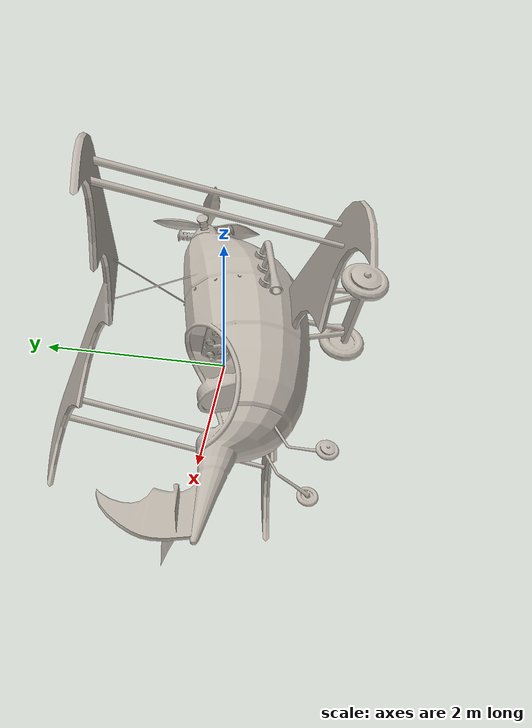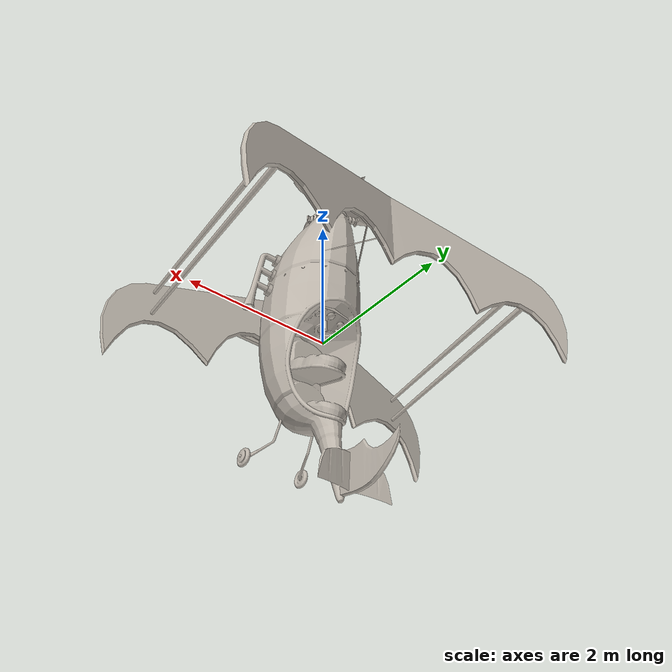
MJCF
<mujoco model="airplane_001">
  <default>
    <default class="visual">
      <geom group="2" type="mesh" contype="0" conaffinity="0"/>
    </default>
    <default class="collision">
      <geom group="3" type="mesh"/>
    </default>
  </default>
  <asset>
    <texture type="2d" name="object_0_d" file="object_0_d.png"/>
    <material name="object_0_BAKED" texture="object_0_d" specular="0.5" shininess="0.225"/>
    <mesh file="airplane_001.obj"/>
    <mesh file="airplane_001_collision_0.obj"/>
    <mesh file="airplane_001_collision_1.obj"/>
    <mesh file="airplane_001_collision_2.obj"/>
    <mesh file="airplane_001_collision_3.obj"/>
    <mesh file="airplane_001_collision_4.obj"/>
    <mesh file="airplane_001_collision_5.obj"/>
    <mesh file="airplane_001_collision_6.obj"/>
    <mesh file="airplane_001_collision_7.obj"/>
    <mesh file="airplane_001_collision_8.obj"/>
    <mesh file="airplane_001_collision_9.obj"/>
    <mesh file="airplane_001_collision_10.obj"/>
    <mesh file="airplane_001_collision_11.obj"/>
    <mesh file="airplane_001_collision_12.obj"/>
    <mesh file="airplane_001_collision_13.obj"/>
    <mesh file="airplane_001_collision_14.obj"/>
    <mesh file="airplane_001_collision_15.obj"/>
    <mesh file="airplane_001_collision_16.obj"/>
    <mesh file="airplane_001_collision_17.obj"/>
    <mesh file="airplane_001_collision_18.obj"/>
    <mesh file="airplane_001_collision_19.obj"/>
    <mesh file="airplane_001_collision_20.obj"/>
    <mesh file="airplane_001_collision_21.obj"/>
    <mesh file="airplane_001_collision_22.obj"/>
    <mesh file="airplane_001_collision_23.obj"/>
    <mesh file="airplane_001_collision_24.obj"/>
    <mesh file="airplane_001_collision_25.obj"/>
    <mesh file="airplane_001_collision_26.obj"/>
    <mesh file="airplane_001_collision_27.obj"/>
    <mesh file="airplane_001_collision_28.obj"/>
    <mesh file="airplane_001_collision_29.obj"/>
    <mesh file="airplane_001_collision_30.obj"/>
    <mesh file="airplane_001_collision_31.obj"/>
  </asset>
  <worldbody>
    <body name="airplane_001">
      <geom material="object_0_BAKED" mesh="airplane_001" class="visual"/>
      <geom mesh="airplane_001_collision_0" class="collision"/>
      <geom mesh="airplane_001_collision_1" class="collision"/>
      <geom mesh="airplane_001_collision_2" class="collision"/>
      <geom mesh="airplane_001_collision_3" class="collision"/>
      <geom mesh="airplane_001_collision_4" class="collision"/>
      <geom mesh="airplane_001_collision_5" class="collision"/>
      <geom mesh="airplane_001_collision_6" class="collision"/>
      <geom mesh="airplane_001_collision_7" class="collision"/>
      <geom mesh="airplane_001_collision_8" class="collision"/>
      <geom mesh="airplane_001_collision_9" class="collision"/>
      <geom mesh="airplane_001_collision_10" class="collision"/>
      <geom mesh="airplane_001_collision_11" class="collision"/>
      <geom mesh="airplane_001_collision_12" class="collision"/>
      <geom mesh="airplane_001_collision_13" class="collision"/>
      <geom mesh="airplane_001_collision_14" class="collision"/>
      <geom mesh="airplane_001_collision_15" class="collision"/>
      <geom mesh="airplane_001_collision_16" class="collision"/>
      <geom mesh="airplane_001_collision_17" class="collision"/>
      <geom mesh="airplane_001_collision_18" class="collision"/>
      <geom mesh="airplane_001_collision_19" class="collision"/>
      <geom mesh="airplane_001_collision_20" class="collision"/>
      <geom mesh="airplane_001_collision_21" class="collision"/>
      <geom mesh="airplane_001_collision_22" class="collision"/>
      <geom mesh="airplane_001_collision_23" class="collision"/>
      <geom mesh="airplane_001_collision_24" class="collision"/>
      <geom mesh="airplane_001_collision_25" class="collision"/>
      <geom mesh="airplane_001_collision_26" class="collision"/>
      <geom mesh="airplane_001_collision_27" class="collision"/>
      <geom mesh="airplane_001_collision_28" class="collision"/>
      <geom mesh="airplane_001_collision_29" class="collision"/>
      <geom mesh="airplane_001_collision_30" class="collision"/>
      <geom mesh="airplane_001_collision_31" class="collision"/>
    </body>
  </worldbody>
</mujoco>
